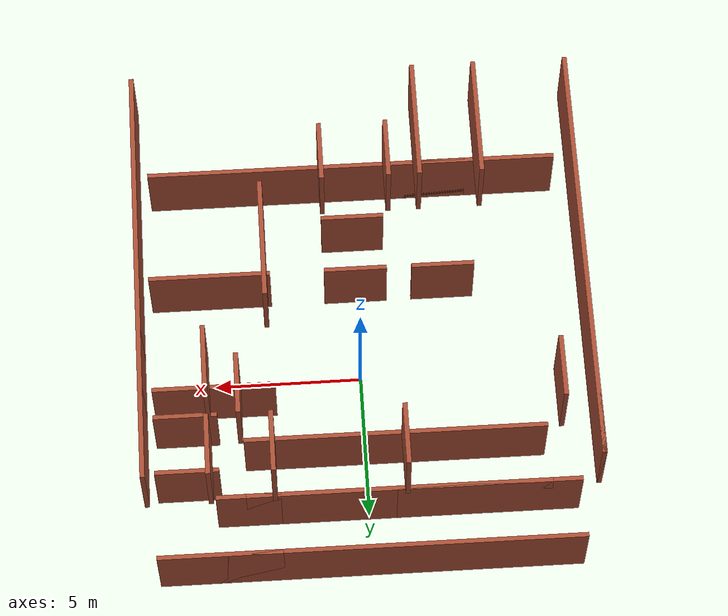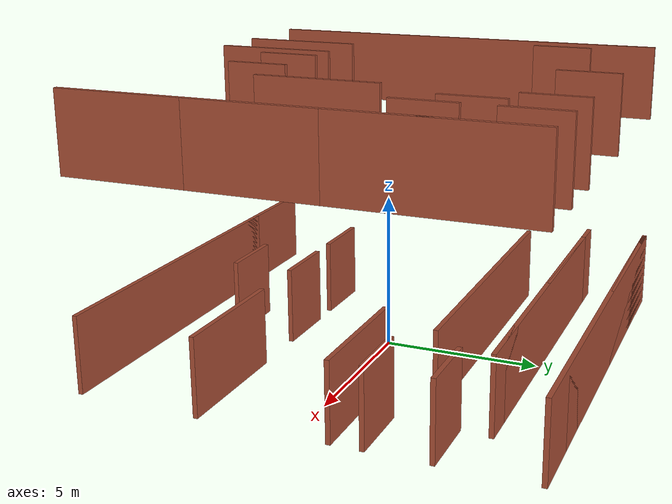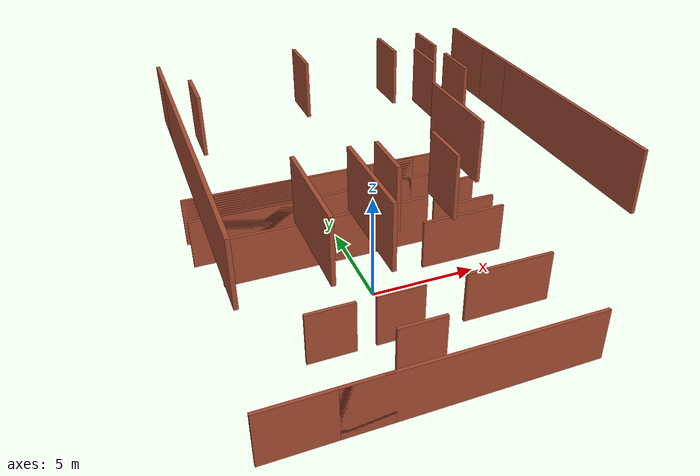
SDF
<sdf version="1.6">
 <model name="random_world">
  <link name="Wall_101">
   <pose>-7.075 0 0 0 0 -1.5708</pose>
   <visual name="Wall_101_Visual">
    <pose>0 0 8 0 -0 0</pose>
    <geometry><box><size>14 0.15 2.5</size></box></geometry>
    <material>
     <script><uri>file://media/materials/scripts/gazebo.material</uri><name>Gazebo/Bricks</name></script>
     <ambient>1 1 1 1</ambient>
     <diffuse>1 1 1 1</diffuse>
     <specular>0.2 0.2 0.2 1</specular>
     <emissive>0 0 0 1</emissive>
    </material>
   </visual>
   <collision name="Wall_101_Collision">
    <pose>0 0 8 0 -0 0</pose>
    <geometry><box><size>14 0.15 2.5</size></box></geometry>
    <surface>
     <friction>
      <ode><mu>1</mu><mu2>1</mu2><fdir1>0 0 0</fdir1><slip1>0</slip1><slip2>0</slip2></ode>
      <torsional>
       <coefficient>1</coefficient>
       <patch_radius>0</patch_radius>
       <surface_radius>0</surface_radius>
       <use_patch_radius>1</use_patch_radius>
       <ode><slip>0</slip></ode>
      </torsional>
     </friction>
     <bounce><restitution_coefficient>0</restitution_coefficient><threshold>1e+06</threshold></bounce>
     <contact>
      <collide_without_contact>0</collide_without_contact>
      <collide_without_contact_bitmask>1</collide_without_contact_bitmask>
      <collide_bitmask>1</collide_bitmask>
      <ode>
       <soft_cfm>0</soft_cfm>
       <soft_erp>0.2</soft_erp>
       <kp>1e+13</kp>
       <kd>1</kd>
       <max_vel>0.01</max_vel>
       <min_depth>0</min_depth>
      </ode>
      <bullet>
       <split_impulse>1</split_impulse>
       <split_impulse_penetration_threshold>-0.01</split_impulse_penetration_threshold>
       <soft_cfm>0</soft_cfm>
       <soft_erp>0.2</soft_erp>
       <kp>1e+13</kp>
       <kd>1</kd>
      </bullet>
     </contact>
    </surface>
   </collision>
  </link>
  <link name="Wall_102">
   <pose>-4 7.075 0 0 -0 0</pose>
   <visual name="Wall_102_Visual">
    <pose>4 0 1.25 0 -0 0</pose>
    <geometry><box><size>14.15 0.15 2.5</size></box></geometry>
    <material>
     <script><uri>file://media/materials/scripts/gazebo.material</uri><name>Gazebo/Bricks</name></script>
     <ambient>1 1 1 1</ambient>
     <diffuse>1 1 1 1</diffuse>
     <specular>0.2 0.2 0.2 1</specular>
     <emissive>0 0 0 1</emissive>
    </material>
   </visual>
   <collision name="Wall_102_Collision">
    <pose>4 0 1.25 0 -0 0</pose>
    <geometry><box><size>14.15 0.15 2.5</size></box></geometry>
    <surface>
     <friction>
      <ode><mu>1</mu><mu2>1</mu2><fdir1>0 0 0</fdir1><slip1>0</slip1><slip2>0</slip2></ode>
      <torsional>
       <coefficient>1</coefficient>
       <patch_radius>0</patch_radius>
       <surface_radius>0</surface_radius>
       <use_patch_radius>1</use_patch_radius>
       <ode><slip>0</slip></ode>
      </torsional>
     </friction>
     <bounce><restitution_coefficient>0</restitution_coefficient><threshold>1e+06</threshold></bounce>
     <contact>
      <collide_without_contact>0</collide_without_contact>
      <collide_without_contact_bitmask>1</collide_without_contact_bitmask>
      <collide_bitmask>1</collide_bitmask>
      <ode>
       <soft_cfm>0</soft_cfm>
       <soft_erp>0.2</soft_erp>
       <kp>1e+13</kp>
       <kd>1</kd>
       <max_vel>0.01</max_vel>
       <min_depth>0</min_depth>
      </ode>
      <bullet>
       <split_impulse>1</split_impulse>
       <split_impulse_penetration_threshold>-0.01</split_impulse_penetration_threshold>
       <soft_cfm>0</soft_cfm>
       <soft_erp>0.2</soft_erp>
       <kp>1e+13</kp>
       <kd>1</kd>
      </bullet>
     </contact>
    </surface>
   </collision>
  </link>
  <link name="Wall_103">
   <pose>7.075 0 0 0 0 -1.5708</pose>
   <visual name="Wall_103_Visual">
    <pose>0 0 8 0 -0 0</pose>
    <geometry><box><size>14 0.15 2.5</size></box></geometry>
    <material>
     <script><uri>file://media/materials/scripts/gazebo.material</uri><name>Gazebo/Bricks</name></script>
     <ambient>1 1 1 1</ambient>
     <diffuse>1 1 1 1</diffuse>
     <specular>0.2 0.2 0.2 1</specular>
     <emissive>0 0 0 1</emissive>
    </material>
   </visual>
   <collision name="Wall_103_Collision">
    <pose>0 0 8 0 -0 0</pose>
    <geometry><box><size>14 0.15 2.5</size></box></geometry>
    <surface>
     <friction>
      <ode><mu>1</mu><mu2>1</mu2><fdir1>0 0 0</fdir1><slip1>0</slip1><slip2>0</slip2></ode>
      <torsional>
       <coefficient>1</coefficient>
       <patch_radius>0</patch_radius>
       <surface_radius>0</surface_radius>
       <use_patch_radius>1</use_patch_radius>
       <ode><slip>0</slip></ode>
      </torsional>
     </friction>
     <bounce><restitution_coefficient>0</restitution_coefficient><threshold>1e+06</threshold></bounce>
     <contact>
      <collide_without_contact>0</collide_without_contact>
      <collide_without_contact_bitmask>1</collide_without_contact_bitmask>
      <collide_bitmask>1</collide_bitmask>
      <ode>
       <soft_cfm>0</soft_cfm>
       <soft_erp>0.2</soft_erp>
       <kp>1e+13</kp>
       <kd>1</kd>
       <max_vel>0.01</max_vel>
       <min_depth>0</min_depth>
      </ode>
      <bullet>
       <split_impulse>1</split_impulse>
       <split_impulse_penetration_threshold>-0.01</split_impulse_penetration_threshold>
       <soft_cfm>0</soft_cfm>
       <soft_erp>0.2</soft_erp>
       <kp>1e+13</kp>
       <kd>1</kd>
      </bullet>
     </contact>
    </surface>
   </collision>
  </link>
  <link name="Wall_104">
   <pose>-4 -7.075 0 0 -0 0</pose>
   <visual name="Wall_104_Visual">
    <pose>3.925 0 1.25 0 -0 0</pose>
    <geometry><box><size>14.15 0.15 2.5</size></box></geometry>
    <material>
     <script><uri>file://media/materials/scripts/gazebo.material</uri><name>Gazebo/Bricks</name></script>
     <ambient>1 1 1 1</ambient>
     <diffuse>1 1 1 1</diffuse>
     <specular>0.2 0.2 0.2 1</specular>
     <emissive>0 0 0 1</emissive>
    </material>
   </visual>
   <collision name="Wall_104_Collision">
    <pose>3.925 0 1.25 0 -0 0</pose>
    <geometry><box><size>14.15 0.15 2.5</size></box></geometry>
    <surface>
     <friction>
      <ode><mu>1</mu><mu2>1</mu2><fdir1>0 0 0</fdir1><slip1>0</slip1><slip2>0</slip2></ode>
      <torsional>
       <coefficient>1</coefficient>
       <patch_radius>0</patch_radius>
       <surface_radius>0</surface_radius>
       <use_patch_radius>1</use_patch_radius>
       <ode><slip>0</slip></ode>
      </torsional>
     </friction>
     <bounce><restitution_coefficient>0</restitution_coefficient><threshold>1e+06</threshold></bounce>
     <contact>
      <collide_without_contact>0</collide_without_contact>
      <collide_without_contact_bitmask>1</collide_without_contact_bitmask>
      <collide_bitmask>1</collide_bitmask>
      <ode>
       <soft_cfm>0</soft_cfm>
       <soft_erp>0.2</soft_erp>
       <kp>1e+13</kp>
       <kd>1</kd>
       <max_vel>0.01</max_vel>
       <min_depth>0</min_depth>
      </ode>
      <bullet>
       <split_impulse>1</split_impulse>
       <split_impulse_penetration_threshold>-0.01</split_impulse_penetration_threshold>
       <soft_cfm>0</soft_cfm>
       <soft_erp>0.2</soft_erp>
       <kp>1e+13</kp>
       <kd>1</kd>
      </bullet>
     </contact>
    </surface>
   </collision>
  </link>
  <link name="Wall_Room_H_1">
   <pose>7.075 -1 0 0 0 -1.5708</pose>
   <visual name="Wall_Room_H_1_Visual">
    <pose>0 0 8 0 -0 0</pose>
    <geometry><box><size>4 0.15 2.5</size></box></geometry>
    <material>
     <script><uri>file://media/materials/scripts/gazebo.material</uri><name>Gazebo/Bricks</name></script>
     <ambient>1 1 1 1</ambient>
     <diffuse>1 1 1 1</diffuse>
     <specular>0.2 0.2 0.2 1</specular>
     <emissive>0 0 0 1</emissive>
    </material>
   </visual>
   <collision name="Wall_Room_H_1_Collision">
    <pose>0 0 8 0 -0 0</pose>
    <geometry><box><size>4 0.15 2.5</size></box></geometry>
    <surface>
     <friction>
      <ode><mu>1</mu><mu2>1</mu2><fdir1>0 0 0</fdir1><slip1>0</slip1><slip2>0</slip2></ode>
      <torsional>
       <coefficient>1</coefficient>
       <patch_radius>0</patch_radius>
       <surface_radius>0</surface_radius>
       <use_patch_radius>1</use_patch_radius>
       <ode><slip>0</slip></ode>
      </torsional>
     </friction>
     <bounce><restitution_coefficient>0</restitution_coefficient><threshold>1e+06</threshold></bounce>
     <contact>
      <collide_without_contact>0</collide_without_contact>
      <collide_without_contact_bitmask>1</collide_without_contact_bitmask>
      <collide_bitmask>1</collide_bitmask>
      <ode>
       <soft_cfm>0</soft_cfm>
       <soft_erp>0.2</soft_erp>
       <kp>1e+13</kp>
       <kd>1</kd>
       <max_vel>0.01</max_vel>
       <min_depth>0</min_depth>
      </ode>
      <bullet>
       <split_impulse>1</split_impulse>
       <split_impulse_penetration_threshold>-0.01</split_impulse_penetration_threshold>
       <soft_cfm>0</soft_cfm>
       <soft_erp>0.2</soft_erp>
       <kp>1e+13</kp>
       <kd>1</kd>
      </bullet>
     </contact>
    </surface>
   </collision>
  </link>
  <link name="Wall_Room_H_2">
   <pose>3.075 -1 0 0 0 -1.5708</pose>
   <visual name="Wall_Room_H_2_Visual">
    <pose>0 0 8 0 -0 0</pose>
    <geometry><box><size>4 0.15 2.5</size></box></geometry>
    <material>
     <script><uri>file://media/materials/scripts/gazebo.material</uri><name>Gazebo/Bricks</name></script>
     <ambient>1 1 1 1</ambient>
     <diffuse>1 1 1 1</diffuse>
     <specular>0.2 0.2 0.2 1</specular>
     <emissive>0 0 0 1</emissive>
    </material>
   </visual>
   <collision name="Wall_Room_H_2_Collision">
    <pose>0 0 8 0 -0 0</pose>
    <geometry><box><size>4 0.15 2.5</size></box></geometry>
    <surface>
     <friction>
      <ode><mu>1</mu><mu2>1</mu2><fdir1>0 0 0</fdir1><slip1>0</slip1><slip2>0</slip2></ode>
      <torsional>
       <coefficient>1</coefficient>
       <patch_radius>0</patch_radius>
       <surface_radius>0</surface_radius>
       <use_patch_radius>1</use_patch_radius>
       <ode><slip>0</slip></ode>
      </torsional>
     </friction>
     <bounce><restitution_coefficient>0</restitution_coefficient><threshold>1e+06</threshold></bounce>
     <contact>
      <collide_without_contact>0</collide_without_contact>
      <collide_without_contact_bitmask>1</collide_without_contact_bitmask>
      <collide_bitmask>1</collide_bitmask>
      <ode>
       <soft_cfm>0</soft_cfm>
       <soft_erp>0.2</soft_erp>
       <kp>1e+13</kp>
       <kd>1</kd>
       <max_vel>0.01</max_vel>
       <min_depth>0</min_depth>
      </ode>
      <bullet>
       <split_impulse>1</split_impulse>
       <split_impulse_penetration_threshold>-0.01</split_impulse_penetration_threshold>
       <soft_cfm>0</soft_cfm>
       <soft_erp>0.2</soft_erp>
       <kp>1e+13</kp>
       <kd>1</kd>
      </bullet>
     </contact>
    </surface>
   </collision>
  </link>
  <link name="Wall_Room_V_3">
   <pose>5 1.075 0 0 -0 0</pose>
   <visual name="Wall_Room_V_3_Visual">
    <pose>0 0 1.25 0 -0 0</pose>
    <geometry><box><size>4.15 0.15 2.5</size></box></geometry>
    <material>
     <script><uri>file://media/materials/scripts/gazebo.material</uri><name>Gazebo/Bricks</name></script>
     <ambient>1 1 1 1</ambient>
     <diffuse>1 1 1 1</diffuse>
     <specular>0.2 0.2 0.2 1</specular>
     <emissive>0 0 0 1</emissive>
    </material>
   </visual>
   <collision name="Wall_Room_V_3_Collision">
    <pose>0 0 1.25 0 -0 0</pose>
    <geometry><box><size>4.15 0.15 2.5</size></box></geometry>
    <surface>
     <friction>
      <ode><mu>1</mu><mu2>1</mu2><fdir1>0 0 0</fdir1><slip1>0</slip1><slip2>0</slip2></ode>
      <torsional>
       <coefficient>1</coefficient>
       <patch_radius>0</patch_radius>
       <surface_radius>0</surface_radius>
       <use_patch_radius>1</use_patch_radius>
       <ode><slip>0</slip></ode>
      </torsional>
     </friction>
     <bounce><restitution_coefficient>0</restitution_coefficient><threshold>1e+06</threshold></bounce>
     <contact>
      <collide_without_contact>0</collide_without_contact>
      <collide_without_contact_bitmask>1</collide_without_contact_bitmask>
      <collide_bitmask>1</collide_bitmask>
      <ode>
       <soft_cfm>0</soft_cfm>
       <soft_erp>0.2</soft_erp>
       <kp>1e+13</kp>
       <kd>1</kd>
       <max_vel>0.01</max_vel>
       <min_depth>0</min_depth>
      </ode>
      <bullet>
       <split_impulse>1</split_impulse>
       <split_impulse_penetration_threshold>-0.01</split_impulse_penetration_threshold>
       <soft_cfm>0</soft_cfm>
       <soft_erp>0.2</soft_erp>
       <kp>1e+13</kp>
       <kd>1</kd>
      </bullet>
     </contact>
    </surface>
   </collision>
  </link>
  <link name="Wall_Room_V_4">
   <pose>5 -3.075 0 0 -0 0</pose>
   <visual name="Wall_Room_V_4_Visual">
    <pose>0 0 1.25 0 -0 0</pose>
    <geometry><box><size>4.15 0.15 2.5</size></box></geometry>
    <material>
     <script><uri>file://media/materials/scripts/gazebo.material</uri><name>Gazebo/Bricks</name></script>
     <ambient>1 1 1 1</ambient>
     <diffuse>1 1 1 1</diffuse>
     <specular>0.2 0.2 0.2 1</specular>
     <emissive>0 0 0 1</emissive>
    </material>
   </visual>
   <collision name="Wall_Room_V_4_Collision">
    <pose>0 0 1.25 0 -0 0</pose>
    <geometry><box><size>4.15 0.15 2.5</size></box></geometry>
    <surface>
     <friction>
      <ode><mu>1</mu><mu2>1</mu2><fdir1>0 0 0</fdir1><slip1>0</slip1><slip2>0</slip2></ode>
      <torsional>
       <coefficient>1</coefficient>
       <patch_radius>0</patch_radius>
       <surface_radius>0</surface_radius>
       <use_patch_radius>1</use_patch_radius>
       <ode><slip>0</slip></ode>
      </torsional>
     </friction>
     <bounce><restitution_coefficient>0</restitution_coefficient><threshold>1e+06</threshold></bounce>
     <contact>
      <collide_without_contact>0</collide_without_contact>
      <collide_without_contact_bitmask>1</collide_without_contact_bitmask>
      <collide_bitmask>1</collide_bitmask>
      <ode>
       <soft_cfm>0</soft_cfm>
       <soft_erp>0.2</soft_erp>
       <kp>1e+13</kp>
       <kd>1</kd>
       <max_vel>0.01</max_vel>
       <min_depth>0</min_depth>
      </ode>
      <bullet>
       <split_impulse>1</split_impulse>
       <split_impulse_penetration_threshold>-0.01</split_impulse_penetration_threshold>
       <soft_cfm>0</soft_cfm>
       <soft_erp>0.2</soft_erp>
       <kp>1e+13</kp>
       <kd>1</kd>
      </bullet>
     </contact>
    </surface>
   </collision>
  </link>
  <link name="Wall_Room_H_5">
   <pose>4.075 4 0 0 0 -1.5708</pose>
   <visual name="Wall_Room_H_5_Visual">
    <pose>0 0 8 0 -0 0</pose>
    <geometry><box><size>2 0.15 2.5</size></box></geometry>
    <material>
     <script><uri>file://media/materials/scripts/gazebo.material</uri><name>Gazebo/Bricks</name></script>
     <ambient>1 1 1 1</ambient>
     <diffuse>1 1 1 1</diffuse>
     <specular>0.2 0.2 0.2 1</specular>
     <emissive>0 0 0 1</emissive>
    </material>
   </visual>
   <collision name="Wall_Room_H_5_Collision">
    <pose>0 0 8 0 -0 0</pose>
    <geometry><box><size>2 0.15 2.5</size></box></geometry>
    <surface>
     <friction>
      <ode><mu>1</mu><mu2>1</mu2><fdir1>0 0 0</fdir1><slip1>0</slip1><slip2>0</slip2></ode>
      <torsional>
       <coefficient>1</coefficient>
       <patch_radius>0</patch_radius>
       <surface_radius>0</surface_radius>
       <use_patch_radius>1</use_patch_radius>
       <ode><slip>0</slip></ode>
      </torsional>
     </friction>
     <bounce><restitution_coefficient>0</restitution_coefficient><threshold>1e+06</threshold></bounce>
     <contact>
      <collide_without_contact>0</collide_without_contact>
      <collide_without_contact_bitmask>1</collide_without_contact_bitmask>
      <collide_bitmask>1</collide_bitmask>
      <ode>
       <soft_cfm>0</soft_cfm>
       <soft_erp>0.2</soft_erp>
       <kp>1e+13</kp>
       <kd>1</kd>
       <max_vel>0.01</max_vel>
       <min_depth>0</min_depth>
      </ode>
      <bullet>
       <split_impulse>1</split_impulse>
       <split_impulse_penetration_threshold>-0.01</split_impulse_penetration_threshold>
       <soft_cfm>0</soft_cfm>
       <soft_erp>0.2</soft_erp>
       <kp>1e+13</kp>
       <kd>1</kd>
      </bullet>
     </contact>
    </surface>
   </collision>
  </link>
  <link name="Wall_Room_H_6">
   <pose>-6.075 4 0 0 0 -1.5708</pose>
   <visual name="Wall_Room_H_6_Visual">
    <pose>0 0 8 0 -0 0</pose>
    <geometry><box><size>2 0.15 2.5</size></box></geometry>
    <material>
     <script><uri>file://media/materials/scripts/gazebo.material</uri><name>Gazebo/Bricks</name></script>
     <ambient>1 1 1 1</ambient>
     <diffuse>1 1 1 1</diffuse>
     <specular>0.2 0.2 0.2 1</specular>
     <emissive>0 0 0 1</emissive>
    </material>
   </visual>
   <collision name="Wall_Room_H_6_Collision">
    <pose>0 0 8 0 -0 0</pose>
    <geometry><box><size>2 0.15 2.5</size></box></geometry>
    <surface>
     <friction>
      <ode><mu>1</mu><mu2>1</mu2><fdir1>0 0 0</fdir1><slip1>0</slip1><slip2>0</slip2></ode>
      <torsional>
       <coefficient>1</coefficient>
       <patch_radius>0</patch_radius>
       <surface_radius>0</surface_radius>
       <use_patch_radius>1</use_patch_radius>
       <ode><slip>0</slip></ode>
      </torsional>
     </friction>
     <bounce><restitution_coefficient>0</restitution_coefficient><threshold>1e+06</threshold></bounce>
     <contact>
      <collide_without_contact>0</collide_without_contact>
      <collide_without_contact_bitmask>1</collide_without_contact_bitmask>
      <collide_bitmask>1</collide_bitmask>
      <ode>
       <soft_cfm>0</soft_cfm>
       <soft_erp>0.2</soft_erp>
       <kp>1e+13</kp>
       <kd>1</kd>
       <max_vel>0.01</max_vel>
       <min_depth>0</min_depth>
      </ode>
      <bullet>
       <split_impulse>1</split_impulse>
       <split_impulse_penetration_threshold>-0.01</split_impulse_penetration_threshold>
       <soft_cfm>0</soft_cfm>
       <soft_erp>0.2</soft_erp>
       <kp>1e+13</kp>
       <kd>1</kd>
      </bullet>
     </contact>
    </surface>
   </collision>
  </link>
  <link name="Wall_Room_V_7">
   <pose>-1 5.075 0 0 -0 0</pose>
   <visual name="Wall_Room_V_7_Visual">
    <pose>0 0 1.25 0 -0 0</pose>
    <geometry><box><size>10.15 0.15 2.5</size></box></geometry>
    <material>
     <script><uri>file://media/materials/scripts/gazebo.material</uri><name>Gazebo/Bricks</name></script>
     <ambient>1 1 1 1</ambient>
     <diffuse>1 1 1 1</diffuse>
     <specular>0.2 0.2 0.2 1</specular>
     <emissive>0 0 0 1</emissive>
    </material>
   </visual>
   <collision name="Wall_Room_V_7_Collision">
    <pose>0 0 1.25 0 -0 0</pose>
    <geometry><box><size>10.15 0.15 2.5</size></box></geometry>
    <surface>
     <friction>
      <ode><mu>1</mu><mu2>1</mu2><fdir1>0 0 0</fdir1><slip1>0</slip1><slip2>0</slip2></ode>
      <torsional>
       <coefficient>1</coefficient>
       <patch_radius>0</patch_radius>
       <surface_radius>0</surface_radius>
       <use_patch_radius>1</use_patch_radius>
       <ode><slip>0</slip></ode>
      </torsional>
     </friction>
     <bounce><restitution_coefficient>0</restitution_coefficient><threshold>1e+06</threshold></bounce>
     <contact>
      <collide_without_contact>0</collide_without_contact>
      <collide_without_contact_bitmask>1</collide_without_contact_bitmask>
      <collide_bitmask>1</collide_bitmask>
      <ode>
       <soft_cfm>0</soft_cfm>
       <soft_erp>0.2</soft_erp>
       <kp>1e+13</kp>
       <kd>1</kd>
       <max_vel>0.01</max_vel>
       <min_depth>0</min_depth>
      </ode>
      <bullet>
       <split_impulse>1</split_impulse>
       <split_impulse_penetration_threshold>-0.01</split_impulse_penetration_threshold>
       <soft_cfm>0</soft_cfm>
       <soft_erp>0.2</soft_erp>
       <kp>1e+13</kp>
       <kd>1</kd>
      </bullet>
     </contact>
    </surface>
   </collision>
  </link>
  <link name="Wall_Room_V_8">
   <pose>-1 3.075 0 0 -0 0</pose>
   <visual name="Wall_Room_V_8_Visual">
    <pose>0 0 1.25 0 -0 0</pose>
    <geometry><box><size>10.15 0.15 2.5</size></box></geometry>
    <material>
     <script><uri>file://media/materials/scripts/gazebo.material</uri><name>Gazebo/Bricks</name></script>
     <ambient>1 1 1 1</ambient>
     <diffuse>1 1 1 1</diffuse>
     <specular>0.2 0.2 0.2 1</specular>
     <emissive>0 0 0 1</emissive>
    </material>
   </visual>
   <collision name="Wall_Room_V_8_Collision">
    <pose>0 0 1.25 0 -0 0</pose>
    <geometry><box><size>10.15 0.15 2.5</size></box></geometry>
    <surface>
     <friction>
      <ode><mu>1</mu><mu2>1</mu2><fdir1>0 0 0</fdir1><slip1>0</slip1><slip2>0</slip2></ode>
      <torsional>
       <coefficient>1</coefficient>
       <patch_radius>0</patch_radius>
       <surface_radius>0</surface_radius>
       <use_patch_radius>1</use_patch_radius>
       <ode><slip>0</slip></ode>
      </torsional>
     </friction>
     <bounce><restitution_coefficient>0</restitution_coefficient><threshold>1e+06</threshold></bounce>
     <contact>
      <collide_without_contact>0</collide_without_contact>
      <collide_without_contact_bitmask>1</collide_without_contact_bitmask>
      <collide_bitmask>1</collide_bitmask>
      <ode>
       <soft_cfm>0</soft_cfm>
       <soft_erp>0.2</soft_erp>
       <kp>1e+13</kp>
       <kd>1</kd>
       <max_vel>0.01</max_vel>
       <min_depth>0</min_depth>
      </ode>
      <bullet>
       <split_impulse>1</split_impulse>
       <split_impulse_penetration_threshold>-0.01</split_impulse_penetration_threshold>
       <soft_cfm>0</soft_cfm>
       <soft_erp>0.2</soft_erp>
       <kp>1e+13</kp>
       <kd>1</kd>
      </bullet>
     </contact>
    </surface>
   </collision>
  </link>
  <link name="Wall_Room_H_9">
   <pose>5.075 6 0 0 0 -1.5708</pose>
   <visual name="Wall_Room_H_9_Visual">
    <pose>0 0 8 0 -0 0</pose>
    <geometry><box><size>2 0.15 2.5</size></box></geometry>
    <material>
     <script><uri>file://media/materials/scripts/gazebo.material</uri><name>Gazebo/Bricks</name></script>
     <ambient>1 1 1 1</ambient>
     <diffuse>1 1 1 1</diffuse>
     <specular>0.2 0.2 0.2 1</specular>
     <emissive>0 0 0 1</emissive>
    </material>
   </visual>
   <collision name="Wall_Room_H_9_Collision">
    <pose>0 0 8 0 -0 0</pose>
    <geometry><box><size>2 0.15 2.5</size></box></geometry>
    <surface>
     <friction>
      <ode><mu>1</mu><mu2>1</mu2><fdir1>0 0 0</fdir1><slip1>0</slip1><slip2>0</slip2></ode>
      <torsional>
       <coefficient>1</coefficient>
       <patch_radius>0</patch_radius>
       <surface_radius>0</surface_radius>
       <use_patch_radius>1</use_patch_radius>
       <ode><slip>0</slip></ode>
      </torsional>
     </friction>
     <bounce><restitution_coefficient>0</restitution_coefficient><threshold>1e+06</threshold></bounce>
     <contact>
      <collide_without_contact>0</collide_without_contact>
      <collide_without_contact_bitmask>1</collide_without_contact_bitmask>
      <collide_bitmask>1</collide_bitmask>
      <ode>
       <soft_cfm>0</soft_cfm>
       <soft_erp>0.2</soft_erp>
       <kp>1e+13</kp>
       <kd>1</kd>
       <max_vel>0.01</max_vel>
       <min_depth>0</min_depth>
      </ode>
      <bullet>
       <split_impulse>1</split_impulse>
       <split_impulse_penetration_threshold>-0.01</split_impulse_penetration_threshold>
       <soft_cfm>0</soft_cfm>
       <soft_erp>0.2</soft_erp>
       <kp>1e+13</kp>
       <kd>1</kd>
      </bullet>
     </contact>
    </surface>
   </collision>
  </link>
  <link name="Wall_Room_H_10">
   <pose>3.075 6 0 0 0 -1.5708</pose>
   <visual name="Wall_Room_H_10_Visual">
    <pose>0 0 8 0 -0 0</pose>
    <geometry><box><size>2 0.15 2.5</size></box></geometry>
    <material>
     <script><uri>file://media/materials/scripts/gazebo.material</uri><name>Gazebo/Bricks</name></script>
     <ambient>1 1 1 1</ambient>
     <diffuse>1 1 1 1</diffuse>
     <specular>0.2 0.2 0.2 1</specular>
     <emissive>0 0 0 1</emissive>
    </material>
   </visual>
   <collision name="Wall_Room_H_10_Collision">
    <pose>0 0 8 0 -0 0</pose>
    <geometry><box><size>2 0.15 2.5</size></box></geometry>
    <surface>
     <friction>
      <ode><mu>1</mu><mu2>1</mu2><fdir1>0 0 0</fdir1><slip1>0</slip1><slip2>0</slip2></ode>
      <torsional>
       <coefficient>1</coefficient>
       <patch_radius>0</patch_radius>
       <surface_radius>0</surface_radius>
       <use_patch_radius>1</use_patch_radius>
       <ode><slip>0</slip></ode>
      </torsional>
     </friction>
     <bounce><restitution_coefficient>0</restitution_coefficient><threshold>1e+06</threshold></bounce>
     <contact>
      <collide_without_contact>0</collide_without_contact>
      <collide_without_contact_bitmask>1</collide_without_contact_bitmask>
      <collide_bitmask>1</collide_bitmask>
      <ode>
       <soft_cfm>0</soft_cfm>
       <soft_erp>0.2</soft_erp>
       <kp>1e+13</kp>
       <kd>1</kd>
       <max_vel>0.01</max_vel>
       <min_depth>0</min_depth>
      </ode>
      <bullet>
       <split_impulse>1</split_impulse>
       <split_impulse_penetration_threshold>-0.01</split_impulse_penetration_threshold>
       <soft_cfm>0</soft_cfm>
       <soft_erp>0.2</soft_erp>
       <kp>1e+13</kp>
       <kd>1</kd>
      </bullet>
     </contact>
    </surface>
   </collision>
  </link>
  <link name="Wall_Room_V_11">
   <pose>4 7.075 0 0 -0 0</pose>
   <visual name="Wall_Room_V_11_Visual">
    <pose>0 0 1.25 0 -0 0</pose>
    <geometry><box><size>2.15 0.15 2.5</size></box></geometry>
    <material>
     <script><uri>file://media/materials/scripts/gazebo.material</uri><name>Gazebo/Bricks</name></script>
     <ambient>1 1 1 1</ambient>
     <diffuse>1 1 1 1</diffuse>
     <specular>0.2 0.2 0.2 1</specular>
     <emissive>0 0 0 1</emissive>
    </material>
   </visual>
   <collision name="Wall_Room_V_11_Collision">
    <pose>0 0 1.25 0 -0 0</pose>
    <geometry><box><size>2.15 0.15 2.5</size></box></geometry>
    <surface>
     <friction>
      <ode><mu>1</mu><mu2>1</mu2><fdir1>0 0 0</fdir1><slip1>0</slip1><slip2>0</slip2></ode>
      <torsional>
       <coefficient>1</coefficient>
       <patch_radius>0</patch_radius>
       <surface_radius>0</surface_radius>
       <use_patch_radius>1</use_patch_radius>
       <ode><slip>0</slip></ode>
      </torsional>
     </friction>
     <bounce><restitution_coefficient>0</restitution_coefficient><threshold>1e+06</threshold></bounce>
     <contact>
      <collide_without_contact>0</collide_without_contact>
      <collide_without_contact_bitmask>1</collide_without_contact_bitmask>
      <collide_bitmask>1</collide_bitmask>
      <ode>
       <soft_cfm>0</soft_cfm>
       <soft_erp>0.2</soft_erp>
       <kp>1e+13</kp>
       <kd>1</kd>
       <max_vel>0.01</max_vel>
       <min_depth>0</min_depth>
      </ode>
      <bullet>
       <split_impulse>1</split_impulse>
       <split_impulse_penetration_threshold>-0.01</split_impulse_penetration_threshold>
       <soft_cfm>0</soft_cfm>
       <soft_erp>0.2</soft_erp>
       <kp>1e+13</kp>
       <kd>1</kd>
      </bullet>
     </contact>
    </surface>
   </collision>
  </link>
  <link name="Wall_Room_V_12">
   <pose>4 5.075 0 0 -0 0</pose>
   <visual name="Wall_Room_V_12_Visual">
    <pose>0 0 1.25 0 -0 0</pose>
    <geometry><box><size>2.15 0.15 2.5</size></box></geometry>
    <material>
     <script><uri>file://media/materials/scripts/gazebo.material</uri><name>Gazebo/Bricks</name></script>
     <ambient>1 1 1 1</ambient>
     <diffuse>1 1 1 1</diffuse>
     <specular>0.2 0.2 0.2 1</specular>
     <emissive>0 0 0 1</emissive>
    </material>
   </visual>
   <collision name="Wall_Room_V_12_Collision">
    <pose>0 0 1.25 0 -0 0</pose>
    <geometry><box><size>2.15 0.15 2.5</size></box></geometry>
    <surface>
     <friction>
      <ode><mu>1</mu><mu2>1</mu2><fdir1>0 0 0</fdir1><slip1>0</slip1><slip2>0</slip2></ode>
      <torsional>
       <coefficient>1</coefficient>
       <patch_radius>0</patch_radius>
       <surface_radius>0</surface_radius>
       <use_patch_radius>1</use_patch_radius>
       <ode><slip>0</slip></ode>
      </torsional>
     </friction>
     <bounce><restitution_coefficient>0</restitution_coefficient><threshold>1e+06</threshold></bounce>
     <contact>
      <collide_without_contact>0</collide_without_contact>
      <collide_without_contact_bitmask>1</collide_without_contact_bitmask>
      <collide_bitmask>1</collide_bitmask>
      <ode>
       <soft_cfm>0</soft_cfm>
       <soft_erp>0.2</soft_erp>
       <kp>1e+13</kp>
       <kd>1</kd>
       <max_vel>0.01</max_vel>
       <min_depth>0</min_depth>
      </ode>
      <bullet>
       <split_impulse>1</split_impulse>
       <split_impulse_penetration_threshold>-0.01</split_impulse_penetration_threshold>
       <soft_cfm>0</soft_cfm>
       <soft_erp>0.2</soft_erp>
       <kp>1e+13</kp>
       <kd>1</kd>
      </bullet>
     </contact>
    </surface>
   </collision>
  </link>
  <link name="Wall_Room_H_13">
   <pose>-1.075 6 0 0 0 -1.5708</pose>
   <visual name="Wall_Room_H_13_Visual">
    <pose>0 0 8 0 -0 0</pose>
    <geometry><box><size>2 0.15 2.5</size></box></geometry>
    <material>
     <script><uri>file://media/materials/scripts/gazebo.material</uri><name>Gazebo/Bricks</name></script>
     <ambient>1 1 1 1</ambient>
     <diffuse>1 1 1 1</diffuse>
     <specular>0.2 0.2 0.2 1</specular>
     <emissive>0 0 0 1</emissive>
    </material>
   </visual>
   <collision name="Wall_Room_H_13_Collision">
    <pose>0 0 8 0 -0 0</pose>
    <geometry><box><size>2 0.15 2.5</size></box></geometry>
    <surface>
     <friction>
      <ode><mu>1</mu><mu2>1</mu2><fdir1>0 0 0</fdir1><slip1>0</slip1><slip2>0</slip2></ode>
      <torsional>
       <coefficient>1</coefficient>
       <patch_radius>0</patch_radius>
       <surface_radius>0</surface_radius>
       <use_patch_radius>1</use_patch_radius>
       <ode><slip>0</slip></ode>
      </torsional>
     </friction>
     <bounce><restitution_coefficient>0</restitution_coefficient><threshold>1e+06</threshold></bounce>
     <contact>
      <collide_without_contact>0</collide_without_contact>
      <collide_without_contact_bitmask>1</collide_without_contact_bitmask>
      <collide_bitmask>1</collide_bitmask>
      <ode>
       <soft_cfm>0</soft_cfm>
       <soft_erp>0.2</soft_erp>
       <kp>1e+13</kp>
       <kd>1</kd>
       <max_vel>0.01</max_vel>
       <min_depth>0</min_depth>
      </ode>
      <bullet>
       <split_impulse>1</split_impulse>
       <split_impulse_penetration_threshold>-0.01</split_impulse_penetration_threshold>
       <soft_cfm>0</soft_cfm>
       <soft_erp>0.2</soft_erp>
       <kp>1e+13</kp>
       <kd>1</kd>
      </bullet>
     </contact>
    </surface>
   </collision>
  </link>
  <link name="Wall_Room_H_14">
   <pose>-7.075 6 0 0 0 -1.5708</pose>
   <visual name="Wall_Room_H_14_Visual">
    <pose>0 0 8 0 -0 0</pose>
    <geometry><box><size>2 0.15 2.5</size></box></geometry>
    <material>
     <script><uri>file://media/materials/scripts/gazebo.material</uri><name>Gazebo/Bricks</name></script>
     <ambient>1 1 1 1</ambient>
     <diffuse>1 1 1 1</diffuse>
     <specular>0.2 0.2 0.2 1</specular>
     <emissive>0 0 0 1</emissive>
    </material>
   </visual>
   <collision name="Wall_Room_H_14_Collision">
    <pose>0 0 8 0 -0 0</pose>
    <geometry><box><size>2 0.15 2.5</size></box></geometry>
    <surface>
     <friction>
      <ode><mu>1</mu><mu2>1</mu2><fdir1>0 0 0</fdir1><slip1>0</slip1><slip2>0</slip2></ode>
      <torsional>
       <coefficient>1</coefficient>
       <patch_radius>0</patch_radius>
       <surface_radius>0</surface_radius>
       <use_patch_radius>1</use_patch_radius>
       <ode><slip>0</slip></ode>
      </torsional>
     </friction>
     <bounce><restitution_coefficient>0</restitution_coefficient><threshold>1e+06</threshold></bounce>
     <contact>
      <collide_without_contact>0</collide_without_contact>
      <collide_without_contact_bitmask>1</collide_without_contact_bitmask>
      <collide_bitmask>1</collide_bitmask>
      <ode>
       <soft_cfm>0</soft_cfm>
       <soft_erp>0.2</soft_erp>
       <kp>1e+13</kp>
       <kd>1</kd>
       <max_vel>0.01</max_vel>
       <min_depth>0</min_depth>
      </ode>
      <bullet>
       <split_impulse>1</split_impulse>
       <split_impulse_penetration_threshold>-0.01</split_impulse_penetration_threshold>
       <soft_cfm>0</soft_cfm>
       <soft_erp>0.2</soft_erp>
       <kp>1e+13</kp>
       <kd>1</kd>
      </bullet>
     </contact>
    </surface>
   </collision>
  </link>
  <link name="Wall_Room_V_15">
   <pose>-4 7.075 0 0 -0 0</pose>
   <visual name="Wall_Room_V_15_Visual">
    <pose>0 0 1.25 0 -0 0</pose>
    <geometry><box><size>6.15 0.15 2.5</size></box></geometry>
    <material>
     <script><uri>file://media/materials/scripts/gazebo.material</uri><name>Gazebo/Bricks</name></script>
     <ambient>1 1 1 1</ambient>
     <diffuse>1 1 1 1</diffuse>
     <specular>0.2 0.2 0.2 1</specular>
     <emissive>0 0 0 1</emissive>
    </material>
   </visual>
   <collision name="Wall_Room_V_15_Collision">
    <pose>0 0 1.25 0 -0 0</pose>
    <geometry><box><size>6.15 0.15 2.5</size></box></geometry>
    <surface>
     <friction>
      <ode><mu>1</mu><mu2>1</mu2><fdir1>0 0 0</fdir1><slip1>0</slip1><slip2>0</slip2></ode>
      <torsional>
       <coefficient>1</coefficient>
       <patch_radius>0</patch_radius>
       <surface_radius>0</surface_radius>
       <use_patch_radius>1</use_patch_radius>
       <ode><slip>0</slip></ode>
      </torsional>
     </friction>
     <bounce><restitution_coefficient>0</restitution_coefficient><threshold>1e+06</threshold></bounce>
     <contact>
      <collide_without_contact>0</collide_without_contact>
      <collide_without_contact_bitmask>1</collide_without_contact_bitmask>
      <collide_bitmask>1</collide_bitmask>
      <ode>
       <soft_cfm>0</soft_cfm>
       <soft_erp>0.2</soft_erp>
       <kp>1e+13</kp>
       <kd>1</kd>
       <max_vel>0.01</max_vel>
       <min_depth>0</min_depth>
      </ode>
      <bullet>
       <split_impulse>1</split_impulse>
       <split_impulse_penetration_threshold>-0.01</split_impulse_penetration_threshold>
       <soft_cfm>0</soft_cfm>
       <soft_erp>0.2</soft_erp>
       <kp>1e+13</kp>
       <kd>1</kd>
      </bullet>
     </contact>
    </surface>
   </collision>
  </link>
  <link name="Wall_Room_V_16">
   <pose>-4 5.075 0 0 -0 0</pose>
   <visual name="Wall_Room_V_16_Visual">
    <pose>0 0 1.25 0 -0 0</pose>
    <geometry><box><size>6.15 0.15 2.5</size></box></geometry>
    <material>
     <script><uri>file://media/materials/scripts/gazebo.material</uri><name>Gazebo/Bricks</name></script>
     <ambient>1 1 1 1</ambient>
     <diffuse>1 1 1 1</diffuse>
     <specular>0.2 0.2 0.2 1</specular>
     <emissive>0 0 0 1</emissive>
    </material>
   </visual>
   <collision name="Wall_Room_V_16_Collision">
    <pose>0 0 1.25 0 -0 0</pose>
    <geometry><box><size>6.15 0.15 2.5</size></box></geometry>
    <surface>
     <friction>
      <ode><mu>1</mu><mu2>1</mu2><fdir1>0 0 0</fdir1><slip1>0</slip1><slip2>0</slip2></ode>
      <torsional>
       <coefficient>1</coefficient>
       <patch_radius>0</patch_radius>
       <surface_radius>0</surface_radius>
       <use_patch_radius>1</use_patch_radius>
       <ode><slip>0</slip></ode>
      </torsional>
     </friction>
     <bounce><restitution_coefficient>0</restitution_coefficient><threshold>1e+06</threshold></bounce>
     <contact>
      <collide_without_contact>0</collide_without_contact>
      <collide_without_contact_bitmask>1</collide_without_contact_bitmask>
      <collide_bitmask>1</collide_bitmask>
      <ode>
       <soft_cfm>0</soft_cfm>
       <soft_erp>0.2</soft_erp>
       <kp>1e+13</kp>
       <kd>1</kd>
       <max_vel>0.01</max_vel>
       <min_depth>0</min_depth>
      </ode>
      <bullet>
       <split_impulse>1</split_impulse>
       <split_impulse_penetration_threshold>-0.01</split_impulse_penetration_threshold>
       <soft_cfm>0</soft_cfm>
       <soft_erp>0.2</soft_erp>
       <kp>1e+13</kp>
       <kd>1</kd>
      </bullet>
     </contact>
    </surface>
   </collision>
  </link>
  <link name="Wall_Room_H_17">
   <pose>7.075 3 0 0 0 -1.5708</pose>
   <visual name="Wall_Room_H_17_Visual">
    <pose>0 0 8 0 -0 0</pose>
    <geometry><box><size>2 0.15 2.5</size></box></geometry>
    <material>
     <script><uri>file://media/materials/scripts/gazebo.material</uri><name>Gazebo/Bricks</name></script>
     <ambient>1 1 1 1</ambient>
     <diffuse>1 1 1 1</diffuse>
     <specular>0.2 0.2 0.2 1</specular>
     <emissive>0 0 0 1</emissive>
    </material>
   </visual>
   <collision name="Wall_Room_H_17_Collision">
    <pose>0 0 8 0 -0 0</pose>
    <geometry><box><size>2 0.15 2.5</size></box></geometry>
    <surface>
     <friction>
      <ode><mu>1</mu><mu2>1</mu2><fdir1>0 0 0</fdir1><slip1>0</slip1><slip2>0</slip2></ode>
      <torsional>
       <coefficient>1</coefficient>
       <patch_radius>0</patch_radius>
       <surface_radius>0</surface_radius>
       <use_patch_radius>1</use_patch_radius>
       <ode><slip>0</slip></ode>
      </torsional>
     </friction>
     <bounce><restitution_coefficient>0</restitution_coefficient><threshold>1e+06</threshold></bounce>
     <contact>
      <collide_without_contact>0</collide_without_contact>
      <collide_without_contact_bitmask>1</collide_without_contact_bitmask>
      <collide_bitmask>1</collide_bitmask>
      <ode>
       <soft_cfm>0</soft_cfm>
       <soft_erp>0.2</soft_erp>
       <kp>1e+13</kp>
       <kd>1</kd>
       <max_vel>0.01</max_vel>
       <min_depth>0</min_depth>
      </ode>
      <bullet>
       <split_impulse>1</split_impulse>
       <split_impulse_penetration_threshold>-0.01</split_impulse_penetration_threshold>
       <soft_cfm>0</soft_cfm>
       <soft_erp>0.2</soft_erp>
       <kp>1e+13</kp>
       <kd>1</kd>
      </bullet>
     </contact>
    </surface>
   </collision>
  </link>
  <link name="Wall_Room_H_18">
   <pose>5.075 3 0 0 0 -1.5708</pose>
   <visual name="Wall_Room_H_18_Visual">
    <pose>0 0 8 0 -0 0</pose>
    <geometry><box><size>2 0.15 2.5</size></box></geometry>
    <material>
     <script><uri>file://media/materials/scripts/gazebo.material</uri><name>Gazebo/Bricks</name></script>
     <ambient>1 1 1 1</ambient>
     <diffuse>1 1 1 1</diffuse>
     <specular>0.2 0.2 0.2 1</specular>
     <emissive>0 0 0 1</emissive>
    </material>
   </visual>
   <collision name="Wall_Room_H_18_Collision">
    <pose>0 0 8 0 -0 0</pose>
    <geometry><box><size>2 0.15 2.5</size></box></geometry>
    <surface>
     <friction>
      <ode><mu>1</mu><mu2>1</mu2><fdir1>0 0 0</fdir1><slip1>0</slip1><slip2>0</slip2></ode>
      <torsional>
       <coefficient>1</coefficient>
       <patch_radius>0</patch_radius>
       <surface_radius>0</surface_radius>
       <use_patch_radius>1</use_patch_radius>
       <ode><slip>0</slip></ode>
      </torsional>
     </friction>
     <bounce><restitution_coefficient>0</restitution_coefficient><threshold>1e+06</threshold></bounce>
     <contact>
      <collide_without_contact>0</collide_without_contact>
      <collide_without_contact_bitmask>1</collide_without_contact_bitmask>
      <collide_bitmask>1</collide_bitmask>
      <ode>
       <soft_cfm>0</soft_cfm>
       <soft_erp>0.2</soft_erp>
       <kp>1e+13</kp>
       <kd>1</kd>
       <max_vel>0.01</max_vel>
       <min_depth>0</min_depth>
      </ode>
      <bullet>
       <split_impulse>1</split_impulse>
       <split_impulse_penetration_threshold>-0.01</split_impulse_penetration_threshold>
       <soft_cfm>0</soft_cfm>
       <soft_erp>0.2</soft_erp>
       <kp>1e+13</kp>
       <kd>1</kd>
      </bullet>
     </contact>
    </surface>
   </collision>
  </link>
  <link name="Wall_Room_V_19">
   <pose>6 4.075 0 0 -0 0</pose>
   <visual name="Wall_Room_V_19_Visual">
    <pose>0 0 1.25 0 -0 0</pose>
    <geometry><box><size>2.15 0.15 2.5</size></box></geometry>
    <material>
     <script><uri>file://media/materials/scripts/gazebo.material</uri><name>Gazebo/Bricks</name></script>
     <ambient>1 1 1 1</ambient>
     <diffuse>1 1 1 1</diffuse>
     <specular>0.2 0.2 0.2 1</specular>
     <emissive>0 0 0 1</emissive>
    </material>
   </visual>
   <collision name="Wall_Room_V_19_Collision">
    <pose>0 0 1.25 0 -0 0</pose>
    <geometry><box><size>2.15 0.15 2.5</size></box></geometry>
    <surface>
     <friction>
      <ode><mu>1</mu><mu2>1</mu2><fdir1>0 0 0</fdir1><slip1>0</slip1><slip2>0</slip2></ode>
      <torsional>
       <coefficient>1</coefficient>
       <patch_radius>0</patch_radius>
       <surface_radius>0</surface_radius>
       <use_patch_radius>1</use_patch_radius>
       <ode><slip>0</slip></ode>
      </torsional>
     </friction>
     <bounce><restitution_coefficient>0</restitution_coefficient><threshold>1e+06</threshold></bounce>
     <contact>
      <collide_without_contact>0</collide_without_contact>
      <collide_without_contact_bitmask>1</collide_without_contact_bitmask>
      <collide_bitmask>1</collide_bitmask>
      <ode>
       <soft_cfm>0</soft_cfm>
       <soft_erp>0.2</soft_erp>
       <kp>1e+13</kp>
       <kd>1</kd>
       <max_vel>0.01</max_vel>
       <min_depth>0</min_depth>
      </ode>
      <bullet>
       <split_impulse>1</split_impulse>
       <split_impulse_penetration_threshold>-0.01</split_impulse_penetration_threshold>
       <soft_cfm>0</soft_cfm>
       <soft_erp>0.2</soft_erp>
       <kp>1e+13</kp>
       <kd>1</kd>
      </bullet>
     </contact>
    </surface>
   </collision>
  </link>
  <link name="Wall_Room_V_20">
   <pose>6 2.075 0 0 -0 0</pose>
   <visual name="Wall_Room_V_20_Visual">
    <pose>0 0 1.25 0 -0 0</pose>
    <geometry><box><size>2.15 0.15 2.5</size></box></geometry>
    <material>
     <script><uri>file://media/materials/scripts/gazebo.material</uri><name>Gazebo/Bricks</name></script>
     <ambient>1 1 1 1</ambient>
     <diffuse>1 1 1 1</diffuse>
     <specular>0.2 0.2 0.2 1</specular>
     <emissive>0 0 0 1</emissive>
    </material>
   </visual>
   <collision name="Wall_Room_V_20_Collision">
    <pose>0 0 1.25 0 -0 0</pose>
    <geometry><box><size>2.15 0.15 2.5</size></box></geometry>
    <surface>
     <friction>
      <ode><mu>1</mu><mu2>1</mu2><fdir1>0 0 0</fdir1><slip1>0</slip1><slip2>0</slip2></ode>
      <torsional>
       <coefficient>1</coefficient>
       <patch_radius>0</patch_radius>
       <surface_radius>0</surface_radius>
       <use_patch_radius>1</use_patch_radius>
       <ode><slip>0</slip></ode>
      </torsional>
     </friction>
     <bounce><restitution_coefficient>0</restitution_coefficient><threshold>1e+06</threshold></bounce>
     <contact>
      <collide_without_contact>0</collide_without_contact>
      <collide_without_contact_bitmask>1</collide_without_contact_bitmask>
      <collide_bitmask>1</collide_bitmask>
      <ode>
       <soft_cfm>0</soft_cfm>
       <soft_erp>0.2</soft_erp>
       <kp>1e+13</kp>
       <kd>1</kd>
       <max_vel>0.01</max_vel>
       <min_depth>0</min_depth>
      </ode>
      <bullet>
       <split_impulse>1</split_impulse>
       <split_impulse_penetration_threshold>-0.01</split_impulse_penetration_threshold>
       <soft_cfm>0</soft_cfm>
       <soft_erp>0.2</soft_erp>
       <kp>1e+13</kp>
       <kd>1</kd>
      </bullet>
     </contact>
    </surface>
   </collision>
  </link>
  <link name="Wall_Room_H_21">
   <pose>-2.075 -5 0 0 0 -1.5708</pose>
   <visual name="Wall_Room_H_21_Visual">
    <pose>0 0 8 0 -0 0</pose>
    <geometry><box><size>4 0.15 2.5</size></box></geometry>
    <material>
     <script><uri>file://media/materials/scripts/gazebo.material</uri><name>Gazebo/Bricks</name></script>
     <ambient>1 1 1 1</ambient>
     <diffuse>1 1 1 1</diffuse>
     <specular>0.2 0.2 0.2 1</specular>
     <emissive>0 0 0 1</emissive>
    </material>
   </visual>
   <collision name="Wall_Room_H_21_Collision">
    <pose>0 0 8 0 -0 0</pose>
    <geometry><box><size>4 0.15 2.5</size></box></geometry>
    <surface>
     <friction>
      <ode><mu>1</mu><mu2>1</mu2><fdir1>0 0 0</fdir1><slip1>0</slip1><slip2>0</slip2></ode>
      <torsional>
       <coefficient>1</coefficient>
       <patch_radius>0</patch_radius>
       <surface_radius>0</surface_radius>
       <use_patch_radius>1</use_patch_radius>
       <ode><slip>0</slip></ode>
      </torsional>
     </friction>
     <bounce><restitution_coefficient>0</restitution_coefficient><threshold>1e+06</threshold></bounce>
     <contact>
      <collide_without_contact>0</collide_without_contact>
      <collide_without_contact_bitmask>1</collide_without_contact_bitmask>
      <collide_bitmask>1</collide_bitmask>
      <ode>
       <soft_cfm>0</soft_cfm>
       <soft_erp>0.2</soft_erp>
       <kp>1e+13</kp>
       <kd>1</kd>
       <max_vel>0.01</max_vel>
       <min_depth>0</min_depth>
      </ode>
      <bullet>
       <split_impulse>1</split_impulse>
       <split_impulse_penetration_threshold>-0.01</split_impulse_penetration_threshold>
       <soft_cfm>0</soft_cfm>
       <soft_erp>0.2</soft_erp>
       <kp>1e+13</kp>
       <kd>1</kd>
      </bullet>
     </contact>
    </surface>
   </collision>
  </link>
  <link name="Wall_Room_H_22">
   <pose>-4.075 -5 0 0 0 -1.5708</pose>
   <visual name="Wall_Room_H_22_Visual">
    <pose>0 0 8 0 -0 0</pose>
    <geometry><box><size>4 0.15 2.5</size></box></geometry>
    <material>
     <script><uri>file://media/materials/scripts/gazebo.material</uri><name>Gazebo/Bricks</name></script>
     <ambient>1 1 1 1</ambient>
     <diffuse>1 1 1 1</diffuse>
     <specular>0.2 0.2 0.2 1</specular>
     <emissive>0 0 0 1</emissive>
    </material>
   </visual>
   <collision name="Wall_Room_H_22_Collision">
    <pose>0 0 8 0 -0 0</pose>
    <geometry><box><size>4 0.15 2.5</size></box></geometry>
    <surface>
     <friction>
      <ode><mu>1</mu><mu2>1</mu2><fdir1>0 0 0</fdir1><slip1>0</slip1><slip2>0</slip2></ode>
      <torsional>
       <coefficient>1</coefficient>
       <patch_radius>0</patch_radius>
       <surface_radius>0</surface_radius>
       <use_patch_radius>1</use_patch_radius>
       <ode><slip>0</slip></ode>
      </torsional>
     </friction>
     <bounce><restitution_coefficient>0</restitution_coefficient><threshold>1e+06</threshold></bounce>
     <contact>
      <collide_without_contact>0</collide_without_contact>
      <collide_without_contact_bitmask>1</collide_without_contact_bitmask>
      <collide_bitmask>1</collide_bitmask>
      <ode>
       <soft_cfm>0</soft_cfm>
       <soft_erp>0.2</soft_erp>
       <kp>1e+13</kp>
       <kd>1</kd>
       <max_vel>0.01</max_vel>
       <min_depth>0</min_depth>
      </ode>
      <bullet>
       <split_impulse>1</split_impulse>
       <split_impulse_penetration_threshold>-0.01</split_impulse_penetration_threshold>
       <soft_cfm>0</soft_cfm>
       <soft_erp>0.2</soft_erp>
       <kp>1e+13</kp>
       <kd>1</kd>
      </bullet>
     </contact>
    </surface>
   </collision>
  </link>
  <link name="Wall_Room_V_23">
   <pose>-3 -3.075 0 0 -0 0</pose>
   <visual name="Wall_Room_V_23_Visual">
    <pose>0 0 1.25 0 -0 0</pose>
    <geometry><box><size>2.15 0.15 2.5</size></box></geometry>
    <material>
     <script><uri>file://media/materials/scripts/gazebo.material</uri><name>Gazebo/Bricks</name></script>
     <ambient>1 1 1 1</ambient>
     <diffuse>1 1 1 1</diffuse>
     <specular>0.2 0.2 0.2 1</specular>
     <emissive>0 0 0 1</emissive>
    </material>
   </visual>
   <collision name="Wall_Room_V_23_Collision">
    <pose>0 0 1.25 0 -0 0</pose>
    <geometry><box><size>2.15 0.15 2.5</size></box></geometry>
    <surface>
     <friction>
      <ode><mu>1</mu><mu2>1</mu2><fdir1>0 0 0</fdir1><slip1>0</slip1><slip2>0</slip2></ode>
      <torsional>
       <coefficient>1</coefficient>
       <patch_radius>0</patch_radius>
       <surface_radius>0</surface_radius>
       <use_patch_radius>1</use_patch_radius>
       <ode><slip>0</slip></ode>
      </torsional>
     </friction>
     <bounce><restitution_coefficient>0</restitution_coefficient><threshold>1e+06</threshold></bounce>
     <contact>
      <collide_without_contact>0</collide_without_contact>
      <collide_without_contact_bitmask>1</collide_without_contact_bitmask>
      <collide_bitmask>1</collide_bitmask>
      <ode>
       <soft_cfm>0</soft_cfm>
       <soft_erp>0.2</soft_erp>
       <kp>1e+13</kp>
       <kd>1</kd>
       <max_vel>0.01</max_vel>
       <min_depth>0</min_depth>
      </ode>
      <bullet>
       <split_impulse>1</split_impulse>
       <split_impulse_penetration_threshold>-0.01</split_impulse_penetration_threshold>
       <soft_cfm>0</soft_cfm>
       <soft_erp>0.2</soft_erp>
       <kp>1e+13</kp>
       <kd>1</kd>
      </bullet>
     </contact>
    </surface>
   </collision>
  </link>
  <link name="Wall_Room_V_24">
   <pose>-3 -7.075 0 0 -0 0</pose>
   <visual name="Wall_Room_V_24_Visual">
    <pose>0 0 1.25 0 -0 0</pose>
    <geometry><box><size>2.15 0.15 2.5</size></box></geometry>
    <material>
     <script><uri>file://media/materials/scripts/gazebo.material</uri><name>Gazebo/Bricks</name></script>
     <ambient>1 1 1 1</ambient>
     <diffuse>1 1 1 1</diffuse>
     <specular>0.2 0.2 0.2 1</specular>
     <emissive>0 0 0 1</emissive>
    </material>
   </visual>
   <collision name="Wall_Room_V_24_Collision">
    <pose>0 0 1.25 0 -0 0</pose>
    <geometry><box><size>2.15 0.15 2.5</size></box></geometry>
    <surface>
     <friction>
      <ode><mu>1</mu><mu2>1</mu2><fdir1>0 0 0</fdir1><slip1>0</slip1><slip2>0</slip2></ode>
      <torsional>
       <coefficient>1</coefficient>
       <patch_radius>0</patch_radius>
       <surface_radius>0</surface_radius>
       <use_patch_radius>1</use_patch_radius>
       <ode><slip>0</slip></ode>
      </torsional>
     </friction>
     <bounce><restitution_coefficient>0</restitution_coefficient><threshold>1e+06</threshold></bounce>
     <contact>
      <collide_without_contact>0</collide_without_contact>
      <collide_without_contact_bitmask>1</collide_without_contact_bitmask>
      <collide_bitmask>1</collide_bitmask>
      <ode>
       <soft_cfm>0</soft_cfm>
       <soft_erp>0.2</soft_erp>
       <kp>1e+13</kp>
       <kd>1</kd>
       <max_vel>0.01</max_vel>
       <min_depth>0</min_depth>
      </ode>
      <bullet>
       <split_impulse>1</split_impulse>
       <split_impulse_penetration_threshold>-0.01</split_impulse_penetration_threshold>
       <soft_cfm>0</soft_cfm>
       <soft_erp>0.2</soft_erp>
       <kp>1e+13</kp>
       <kd>1</kd>
      </bullet>
     </contact>
    </surface>
   </collision>
  </link>
  <link name="Wall_Room_H_25">
   <pose>1.075 -4 0 0 0 -1.5708</pose>
   <visual name="Wall_Room_H_25_Visual">
    <pose>0 0 8 0 -0 0</pose>
    <geometry><box><size>2 0.15 2.5</size></box></geometry>
    <material>
     <script><uri>file://media/materials/scripts/gazebo.material</uri><name>Gazebo/Bricks</name></script>
     <ambient>1 1 1 1</ambient>
     <diffuse>1 1 1 1</diffuse>
     <specular>0.2 0.2 0.2 1</specular>
     <emissive>0 0 0 1</emissive>
    </material>
   </visual>
   <collision name="Wall_Room_H_25_Collision">
    <pose>0 0 8 0 -0 0</pose>
    <geometry><box><size>2 0.15 2.5</size></box></geometry>
    <surface>
     <friction>
      <ode><mu>1</mu><mu2>1</mu2><fdir1>0 0 0</fdir1><slip1>0</slip1><slip2>0</slip2></ode>
      <torsional>
       <coefficient>1</coefficient>
       <patch_radius>0</patch_radius>
       <surface_radius>0</surface_radius>
       <use_patch_radius>1</use_patch_radius>
       <ode><slip>0</slip></ode>
      </torsional>
     </friction>
     <bounce><restitution_coefficient>0</restitution_coefficient><threshold>1e+06</threshold></bounce>
     <contact>
      <collide_without_contact>0</collide_without_contact>
      <collide_without_contact_bitmask>1</collide_without_contact_bitmask>
      <collide_bitmask>1</collide_bitmask>
      <ode>
       <soft_cfm>0</soft_cfm>
       <soft_erp>0.2</soft_erp>
       <kp>1e+13</kp>
       <kd>1</kd>
       <max_vel>0.01</max_vel>
       <min_depth>0</min_depth>
      </ode>
      <bullet>
       <split_impulse>1</split_impulse>
       <split_impulse_penetration_threshold>-0.01</split_impulse_penetration_threshold>
       <soft_cfm>0</soft_cfm>
       <soft_erp>0.2</soft_erp>
       <kp>1e+13</kp>
       <kd>1</kd>
      </bullet>
     </contact>
    </surface>
   </collision>
  </link>
  <link name="Wall_Room_H_26">
   <pose>-1.075 -4 0 0 0 -1.5708</pose>
   <visual name="Wall_Room_H_26_Visual">
    <pose>0 0 8 0 -0 0</pose>
    <geometry><box><size>2 0.15 2.5</size></box></geometry>
    <material>
     <script><uri>file://media/materials/scripts/gazebo.material</uri><name>Gazebo/Bricks</name></script>
     <ambient>1 1 1 1</ambient>
     <diffuse>1 1 1 1</diffuse>
     <specular>0.2 0.2 0.2 1</specular>
     <emissive>0 0 0 1</emissive>
    </material>
   </visual>
   <collision name="Wall_Room_H_26_Collision">
    <pose>0 0 8 0 -0 0</pose>
    <geometry><box><size>2 0.15 2.5</size></box></geometry>
    <surface>
     <friction>
      <ode><mu>1</mu><mu2>1</mu2><fdir1>0 0 0</fdir1><slip1>0</slip1><slip2>0</slip2></ode>
      <torsional>
       <coefficient>1</coefficient>
       <patch_radius>0</patch_radius>
       <surface_radius>0</surface_radius>
       <use_patch_radius>1</use_patch_radius>
       <ode><slip>0</slip></ode>
      </torsional>
     </friction>
     <bounce><restitution_coefficient>0</restitution_coefficient><threshold>1e+06</threshold></bounce>
     <contact>
      <collide_without_contact>0</collide_without_contact>
      <collide_without_contact_bitmask>1</collide_without_contact_bitmask>
      <collide_bitmask>1</collide_bitmask>
      <ode>
       <soft_cfm>0</soft_cfm>
       <soft_erp>0.2</soft_erp>
       <kp>1e+13</kp>
       <kd>1</kd>
       <max_vel>0.01</max_vel>
       <min_depth>0</min_depth>
      </ode>
      <bullet>
       <split_impulse>1</split_impulse>
       <split_impulse_penetration_threshold>-0.01</split_impulse_penetration_threshold>
       <soft_cfm>0</soft_cfm>
       <soft_erp>0.2</soft_erp>
       <kp>1e+13</kp>
       <kd>1</kd>
      </bullet>
     </contact>
    </surface>
   </collision>
  </link>
  <link name="Wall_Room_V_27">
   <pose>0 -3.075 0 0 -0 0</pose>
   <visual name="Wall_Room_V_27_Visual">
    <pose>0 0 1.25 0 -0 0</pose>
    <geometry><box><size>2.15 0.15 2.5</size></box></geometry>
    <material>
     <script><uri>file://media/materials/scripts/gazebo.material</uri><name>Gazebo/Bricks</name></script>
     <ambient>1 1 1 1</ambient>
     <diffuse>1 1 1 1</diffuse>
     <specular>0.2 0.2 0.2 1</specular>
     <emissive>0 0 0 1</emissive>
    </material>
   </visual>
   <collision name="Wall_Room_V_27_Collision">
    <pose>0 0 1.25 0 -0 0</pose>
    <geometry><box><size>2.15 0.15 2.5</size></box></geometry>
    <surface>
     <friction>
      <ode><mu>1</mu><mu2>1</mu2><fdir1>0 0 0</fdir1><slip1>0</slip1><slip2>0</slip2></ode>
      <torsional>
       <coefficient>1</coefficient>
       <patch_radius>0</patch_radius>
       <surface_radius>0</surface_radius>
       <use_patch_radius>1</use_patch_radius>
       <ode><slip>0</slip></ode>
      </torsional>
     </friction>
     <bounce><restitution_coefficient>0</restitution_coefficient><threshold>1e+06</threshold></bounce>
     <contact>
      <collide_without_contact>0</collide_without_contact>
      <collide_without_contact_bitmask>1</collide_without_contact_bitmask>
      <collide_bitmask>1</collide_bitmask>
      <ode>
       <soft_cfm>0</soft_cfm>
       <soft_erp>0.2</soft_erp>
       <kp>1e+13</kp>
       <kd>1</kd>
       <max_vel>0.01</max_vel>
       <min_depth>0</min_depth>
      </ode>
      <bullet>
       <split_impulse>1</split_impulse>
       <split_impulse_penetration_threshold>-0.01</split_impulse_penetration_threshold>
       <soft_cfm>0</soft_cfm>
       <soft_erp>0.2</soft_erp>
       <kp>1e+13</kp>
       <kd>1</kd>
      </bullet>
     </contact>
    </surface>
   </collision>
  </link>
  <link name="Wall_Room_V_28">
   <pose>0 -5.075 0 0 -0 0</pose>
   <visual name="Wall_Room_V_28_Visual">
    <pose>0 0 1.25 0 -0 0</pose>
    <geometry><box><size>2.15 0.15 2.5</size></box></geometry>
    <material>
     <script><uri>file://media/materials/scripts/gazebo.material</uri><name>Gazebo/Bricks</name></script>
     <ambient>1 1 1 1</ambient>
     <diffuse>1 1 1 1</diffuse>
     <specular>0.2 0.2 0.2 1</specular>
     <emissive>0 0 0 1</emissive>
    </material>
   </visual>
   <collision name="Wall_Room_V_28_Collision">
    <pose>0 0 1.25 0 -0 0</pose>
    <geometry><box><size>2.15 0.15 2.5</size></box></geometry>
    <surface>
     <friction>
      <ode><mu>1</mu><mu2>1</mu2><fdir1>0 0 0</fdir1><slip1>0</slip1><slip2>0</slip2></ode>
      <torsional>
       <coefficient>1</coefficient>
       <patch_radius>0</patch_radius>
       <surface_radius>0</surface_radius>
       <use_patch_radius>1</use_patch_radius>
       <ode><slip>0</slip></ode>
      </torsional>
     </friction>
     <bounce><restitution_coefficient>0</restitution_coefficient><threshold>1e+06</threshold></bounce>
     <contact>
      <collide_without_contact>0</collide_without_contact>
      <collide_without_contact_bitmask>1</collide_without_contact_bitmask>
      <collide_bitmask>1</collide_bitmask>
      <ode>
       <soft_cfm>0</soft_cfm>
       <soft_erp>0.2</soft_erp>
       <kp>1e+13</kp>
       <kd>1</kd>
       <max_vel>0.01</max_vel>
       <min_depth>0</min_depth>
      </ode>
      <bullet>
       <split_impulse>1</split_impulse>
       <split_impulse_penetration_threshold>-0.01</split_impulse_penetration_threshold>
       <soft_cfm>0</soft_cfm>
       <soft_erp>0.2</soft_erp>
       <kp>1e+13</kp>
       <kd>1</kd>
      </bullet>
     </contact>
    </surface>
   </collision>
  </link>
 </model>
</sdf>
